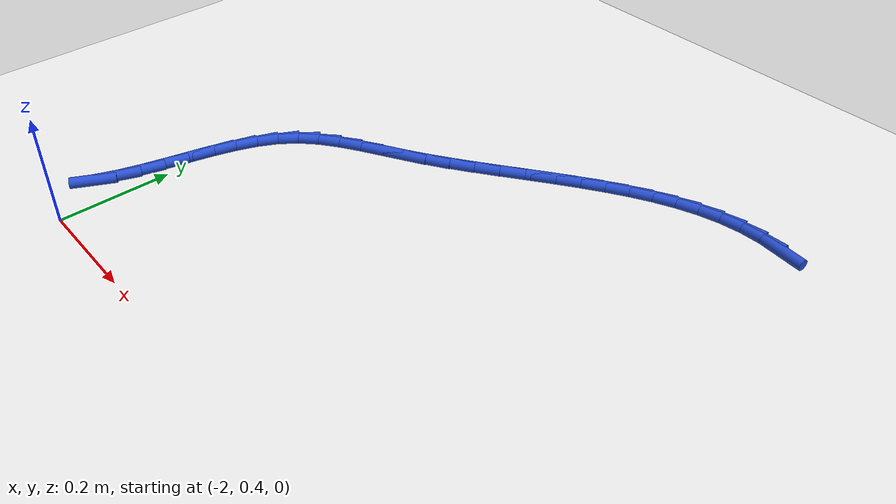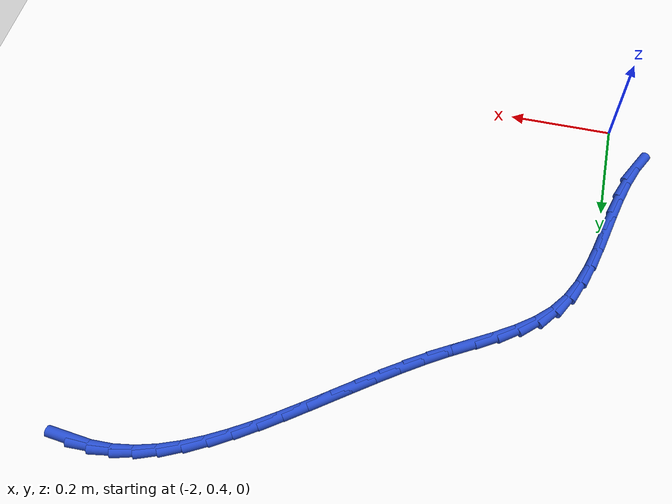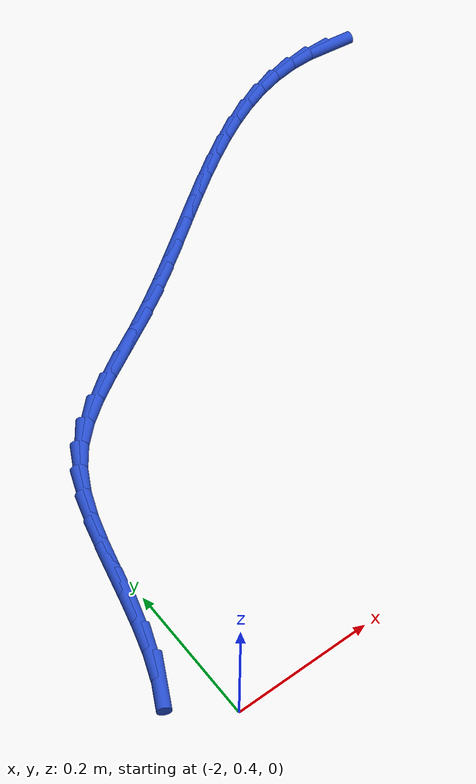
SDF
<sdf version="1.6">
 <world name="default">
  <model name="ground_plane">
   <static>1</static>
   <link name="link">
    <collision name="collision">
     <geometry><plane><normal>0 0 1</normal><size>100 100</size></plane></geometry>
     <surface><friction><ode><mu>100</mu><mu2>50</mu2></ode></friction></surface>
    </collision>
    <visual name="visual">
     <cast_shadows>0</cast_shadows>
     <geometry><plane><normal>0 0 1</normal><size>100 100</size></plane></geometry>
     <material>
      <script><uri>file://media/materials/scripts/gazebo.material</uri><name>Gazebo/WhiteGlow</name></script>
     </material>
    </visual>
   </link>
  </model>
  <model name="line">
   <link name="link_44">
    <pose>-1.1717841676066945 1.2384197218476316 0.01 0 1.57 -0.11088151773742679</pose>
    <collision name="collision">
     <geometry><cylinder><radius>0.01</radius><length>0.08</length></cylinder></geometry>
    </collision>
    <visual name="visual">
     <material>
      <script><name>Gazebo/Blue</name><uri>file://media/materials/scripts/gazebo.material</uri></script>
     </material>
     <geometry><cylinder><radius>0.01</radius><length>0.08</length></cylinder></geometry>
    </visual>
   </link>
   <link name="link_45">
    <pose>-1.2100180524771333 1.2426766130963771 0.01 0 1.57 0.025314217034336586</pose>
    <collision name="collision">
     <geometry><cylinder><radius>0.01</radius><length>0.08</length></cylinder></geometry>
    </collision>
    <visual name="visual">
     <material>
      <script><name>Gazebo/Blue</name><uri>file://media/materials/scripts/gazebo.material</uri></script>
     </material>
     <geometry><cylinder><radius>0.01</radius><length>0.08</length></cylinder></geometry>
    </visual>
   </link>
   <link name="link_46">
    <pose>-1.2477469843669005 1.2417213306659491 0.01 0 1.57 0.15141361080776108</pose>
    <collision name="collision">
     <geometry><cylinder><radius>0.01</radius><length>0.08</length></cylinder></geometry>
    </collision>
    <visual name="visual">
     <material>
      <script><name>Gazebo/Blue</name><uri>file://media/materials/scripts/gazebo.material</uri></script>
     </material>
     <geometry><cylinder><radius>0.01</radius><length>0.08</length></cylinder></geometry>
    </visual>
   </link>
   <link name="link_47">
    <pose>-1.2850392059864337 1.2360312302268042 0.01 0 1.57 0.26301214079685964</pose>
    <collision name="collision">
     <geometry><cylinder><radius>0.01</radius><length>0.08</length></cylinder></geometry>
    </collision>
    <visual name="visual">
     <material>
      <script><name>Gazebo/Blue</name><uri>file://media/materials/scripts/gazebo.material</uri></script>
     </material>
     <geometry><cylinder><radius>0.01</radius><length>0.08</length></cylinder></geometry>
    </visual>
   </link>
   <link name="link_48">
    <pose>-1.3219636184169998 1.2260893528450796 0.01 0 1.57 0.3581972302512357</pose>
    <collision name="collision">
     <geometry><cylinder><radius>0.01</radius><length>0.08</length></cylinder></geometry>
    </collision>
    <visual name="visual">
     <material>
      <script><name>Gazebo/Blue</name><uri>file://media/materials/scripts/gazebo.material</uri></script>
     </material>
     <geometry><cylinder><radius>0.01</radius><length>0.08</length></cylinder></geometry>
    </visual>
   </link>
   <link name="link_49">
    <pose>-1.3585891227398659 1.2123787395869117 0.01 0 1.57 0.4368920691162273</pose>
    <collision name="collision">
     <geometry><cylinder><radius>0.01</radius><length>0.08</length></cylinder></geometry>
    </collision>
    <visual name="visual">
     <material>
      <script><name>Gazebo/Blue</name><uri>file://media/materials/scripts/gazebo.material</uri></script>
     </material>
     <geometry><cylinder><radius>0.01</radius><length>0.08</length></cylinder></geometry>
    </visual>
   </link>
   <link name="link_50">
    <pose>-1.3949846200362965 1.1953824315184376 0.01 0 1.57 0.5000855164081188</pose>
    <collision name="collision">
     <geometry><cylinder><radius>0.01</radius><length>0.08</length></cylinder></geometry>
    </collision>
    <visual name="visual">
     <material>
      <script><name>Gazebo/Blue</name><uri>file://media/materials/scripts/gazebo.material</uri></script>
     </material>
     <geometry><cylinder><radius>0.01</radius><length>0.08</length></cylinder></geometry>
    </visual>
   </link>
   <link name="link_51">
    <pose>-1.4312190113875587 1.1755834697057939 0.01 0 1.57 0.549187407337661</pose>
    <collision name="collision">
     <geometry><cylinder><radius>0.01</radius><length>0.08</length></cylinder></geometry>
    </collision>
    <visual name="visual">
     <material>
      <script><name>Gazebo/Blue</name><uri>file://media/materials/scripts/gazebo.material</uri></script>
     </material>
     <geometry><cylinder><radius>0.01</radius><length>0.08</length></cylinder></geometry>
    </visual>
   </link>
   <link name="link_52">
    <pose>-1.4673611978749193 1.1534648952151176 0.01 0 1.57 0.5856199729258188</pose>
    <collision name="collision">
     <geometry><cylinder><radius>0.01</radius><length>0.08</length></cylinder></geometry>
    </collision>
    <visual name="visual">
     <material>
      <script><name>Gazebo/Blue</name><uri>file://media/materials/scripts/gazebo.material</uri></script>
     </material>
     <geometry><cylinder><radius>0.01</radius><length>0.08</length></cylinder></geometry>
    </visual>
   </link>
   <link name="link_53">
    <pose>-1.5034800805796433 1.129509749112545 0.01 0 1.57 0.6106060815456396</pose>
    <collision name="collision">
     <geometry><cylinder><radius>0.01</radius><length>0.08</length></cylinder></geometry>
    </collision>
    <visual name="visual">
     <material>
      <script><name>Gazebo/Blue</name><uri>file://media/materials/scripts/gazebo.material</uri></script>
     </material>
     <geometry><cylinder><radius>0.01</radius><length>0.08</length></cylinder></geometry>
    </visual>
   </link>
   <link name="link_54">
    <pose>-1.5396445605829978 1.1042010724642133 0.01 0 1.57 0.6250806225158202</pose>
    <collision name="collision">
     <geometry><cylinder><radius>0.01</radius><length>0.08</length></cylinder></geometry>
    </collision>
    <visual name="visual">
     <material>
      <script><name>Gazebo/Blue</name><uri>file://media/materials/scripts/gazebo.material</uri></script>
     </material>
     <geometry><cylinder><radius>0.01</radius><length>0.08</length></cylinder></geometry>
    </visual>
   </link>
   <link name="link_55">
    <pose>-1.5759235389662485 1.0780219063362588 0.01 0 1.57 0.6296661046621987</pose>
    <collision name="collision">
     <geometry><cylinder><radius>0.01</radius><length>0.08</length></cylinder></geometry>
    </collision>
    <visual name="visual">
     <material>
      <script><name>Gazebo/Blue</name><uri>file://media/materials/scripts/gazebo.material</uri></script>
     </material>
     <geometry><cylinder><radius>0.01</radius><length>0.08</length></cylinder></geometry>
    </visual>
   </link>
   <link name="link_56">
    <pose>-1.6123859168106618 1.0514552917948188 0.01 0 1.57 0.6246766472419134</pose>
    <collision name="collision">
     <geometry><cylinder><radius>0.01</radius><length>0.08</length></cylinder></geometry>
    </collision>
    <visual name="visual">
     <material>
      <script><name>Gazebo/Blue</name><uri>file://media/materials/scripts/gazebo.material</uri></script>
     </material>
     <geometry><cylinder><radius>0.01</radius><length>0.08</length></cylinder></geometry>
    </visual>
   </link>
   <link name="link_57">
    <pose>-1.6491005951975033 1.0249842699060299 0.01 0 1.57 0.6101326448427539</pose>
    <collision name="collision">
     <geometry><cylinder><radius>0.01</radius><length>0.08</length></cylinder></geometry>
    </collision>
    <visual name="visual">
     <material>
      <script><name>Gazebo/Blue</name><uri>file://media/materials/scripts/gazebo.material</uri></script>
     </material>
     <geometry><cylinder><radius>0.01</radius><length>0.08</length></cylinder></geometry>
    </visual>
   </link>
   <link name="link_58">
    <pose>-1.6861364752080408 0.9990918817360284 0.01 0 1.57 0.5857806319993869</pose>
    <collision name="collision">
     <geometry><cylinder><radius>0.01</radius><length>0.08</length></cylinder></geometry>
    </collision>
    <visual name="visual">
     <material>
      <script><name>Gazebo/Blue</name><uri>file://media/materials/scripts/gazebo.material</uri></script>
     </material>
     <geometry><cylinder><radius>0.01</radius><length>0.08</length></cylinder></geometry>
    </visual>
   </link>
   <link name="link_59">
    <pose>-1.723562457923539 0.9742611683509518 0.01 0 1.57 0.5513042983160626</pose>
    <collision name="collision">
     <geometry><cylinder><radius>0.01</radius><length>0.08</length></cylinder></geometry>
    </collision>
    <visual name="visual">
     <material>
      <script><name>Gazebo/Blue</name><uri>file://media/materials/scripts/gazebo.material</uri></script>
     </material>
     <geometry><cylinder><radius>0.01</radius><length>0.08</length></cylinder></geometry>
    </visual>
   </link>
   <link name="link_60">
    <pose>-1.7614426939557197 0.9509685645470538 0.01 0 1.57 0.5212864418836666</pose>
    <collision name="collision">
     <geometry><cylinder><radius>0.01</radius><length>0.08</length></cylinder></geometry>
    </collision>
    <visual name="visual">
     <material>
      <script><name>Gazebo/Blue</name><uri>file://media/materials/scripts/gazebo.material</uri></script>
     </material>
     <geometry><cylinder><radius>0.01</radius><length>0.08</length></cylinder></geometry>
    </visual>
   </link>
   <link name="link_61">
    <pose>-1.799447845583769 0.9291432981348755 0.01 0 1.57 0.522524151788277</pose>
    <collision name="collision">
     <geometry><cylinder><radius>0.01</radius><length>0.08</length></cylinder></geometry>
    </collision>
    <visual name="visual">
     <material>
      <script><name>Gazebo/Blue</name><uri>file://media/materials/scripts/gazebo.material</uri></script>
     </material>
     <geometry><cylinder><radius>0.01</radius><length>0.08</length></cylinder></geometry>
    </visual>
   </link>
   <link name="link_62">
    <pose>-1.8365664592503095 0.9077660083138831 0.01 0 1.57 0.5600886514096115</pose>
    <collision name="collision">
     <geometry><cylinder><radius>0.01</radius><length>0.08</length></cylinder></geometry>
    </collision>
    <visual name="visual">
     <material>
      <script><name>Gazebo/Blue</name><uri>file://media/materials/scripts/gazebo.material</uri></script>
     </material>
     <geometry><cylinder><radius>0.01</radius><length>0.08</length></cylinder></geometry>
    </visual>
   </link>
   <link name="link_63">
    <pose>-1.871719070022234 0.8857227538428262 0.01 0 1.57 0.6383545939307347</pose>
    <collision name="collision">
     <geometry><cylinder><radius>0.01</radius><length>0.08</length></cylinder></geometry>
    </collision>
    <visual name="visual">
     <material>
      <script><name>Gazebo/Blue</name><uri>file://media/materials/scripts/gazebo.material</uri></script>
     </material>
     <geometry><cylinder><radius>0.01</radius><length>0.08</length></cylinder></geometry>
    </visual>
   </link>
   <link name="link_64">
    <pose>-1.9038262129664318 0.8618995934804544 0.01 0 1.57 0.7622721081351629</pose>
    <collision name="collision">
     <geometry><cylinder><radius>0.01</radius><length>0.08</length></cylinder></geometry>
    </collision>
    <visual name="visual">
     <material>
      <script><name>Gazebo/Blue</name><uri>file://media/materials/scripts/gazebo.material</uri></script>
     </material>
     <geometry><cylinder><radius>0.01</radius><length>0.08</length></cylinder></geometry>
    </visual>
   </link>
   <link name="link_65">
    <pose>-1.9318084231497958 0.8351825859855172 0.01 0 1.57 0.9291488403048755</pose>
    <collision name="collision">
     <geometry><cylinder><radius>0.01</radius><length>0.08</length></cylinder></geometry>
    </collision>
    <visual name="visual">
     <material>
      <script><name>Gazebo/Blue</name><uri>file://media/materials/scripts/gazebo.material</uri></script>
     </material>
     <geometry><cylinder><radius>0.01</radius><length>0.08</length></cylinder></geometry>
    </visual>
   </link>
   <link name="link_66">
    <pose>-1.9546931605929267 0.8045514782603879 0.01 0 1.57 1.0881359467757474</pose>
    <collision name="collision">
     <geometry><cylinder><radius>0.01</radius><length>0.08</length></cylinder></geometry>
    </collision>
    <visual name="visual">
     <material>
      <script><name>Gazebo/Blue</name><uri>file://media/materials/scripts/gazebo.material</uri></script>
     </material>
     <geometry><cylinder><radius>0.01</radius><length>0.08</length></cylinder></geometry>
    </visual>
   </link>
   <link name="link_67">
    <pose>-1.9727562121993567 0.7700798070501369 0.01 0 1.57 1.2061750852037698</pose>
    <collision name="collision">
     <geometry><cylinder><radius>0.01</radius><length>0.08</length></cylinder></geometry>
    </collision>
    <visual name="visual">
     <material>
      <script><name>Gazebo/Blue</name><uri>file://media/materials/scripts/gazebo.material</uri></script>
     </material>
     <geometry><cylinder><radius>0.01</radius><length>0.08</length></cylinder></geometry>
    </visual>
   </link>
   <link name="link_68">
    <pose>-1.9870812724670175 0.7325490015058 0.01 0 1.57 1.2852200536229144</pose>
    <collision name="collision">
     <geometry><cylinder><radius>0.01</radius><length>0.08</length></cylinder></geometry>
    </collision>
    <visual name="visual">
     <material>
      <script><name>Gazebo/Blue</name><uri>file://media/materials/scripts/gazebo.material</uri></script>
     </material>
     <geometry><cylinder><radius>0.01</radius><length>0.08</length></cylinder></geometry>
    </visual>
   </link>
   <link name="link_69">
    <pose>-1.9987656153898448 0.6927523891962072 0.01 0 1.57 1.3298440328931234</pose>
    <collision name="collision">
     <geometry><cylinder><radius>0.01</radius><length>0.08</length></cylinder></geometry>
    </collision>
    <visual name="visual">
     <material>
      <script><name>Gazebo/Blue</name><uri>file://media/materials/scripts/gazebo.material</uri></script>
     </material>
     <geometry><cylinder><radius>0.01</radius><length>0.08</length></cylinder></geometry>
    </visual>
   </link>
   <link name="link_70">
    <pose>-2.0089065149617724 0.6514832976901893 0.01 0 1.57 1.3436723399939021</pose>
    <collision name="collision">
     <geometry><cylinder><radius>0.01</radius><length>0.08</length></cylinder></geometry>
    </collision>
    <visual name="visual">
     <material>
      <script><name>Gazebo/Blue</name><uri>file://media/materials/scripts/gazebo.material</uri></script>
     </material>
     <geometry><cylinder><radius>0.01</radius><length>0.08</length></cylinder></geometry>
    </visual>
   </link>
   <link name="link_71">
    <pose>-2.0186012451767366 0.6095350545565762 0.01 0 1.57 1.3283543671889042</pose>
    <collision name="collision">
     <geometry><cylinder><radius>0.01</radius><length>0.08</length></cylinder></geometry>
    </collision>
    <visual name="visual">
     <material>
      <script><name>Gazebo/Blue</name><uri>file://media/materials/scripts/gazebo.material</uri></script>
     </material>
     <geometry><cylinder><radius>0.01</radius><length>0.08</length></cylinder></geometry>
    </visual>
   </link>
   <link name="link_72">
    <pose>-2.02894708002867 0.5677009873641989 0.01 0 1.57 1.2834637673185854</pose>
    <collision name="collision">
     <geometry><cylinder><radius>0.01</radius><length>0.08</length></cylinder></geometry>
    </collision>
    <visual name="visual">
     <material>
      <script><name>Gazebo/Blue</name><uri>file://media/materials/scripts/gazebo.material</uri></script>
     </material>
     <geometry><cylinder><radius>0.01</radius><length>0.08</length></cylinder></geometry>
    </visual>
   </link>
   <link name="link_73">
    <pose>-2.041041293511509 0.5267744236818874 0.01 0 1.57 1.206890173770978</pose>
    <collision name="collision">
     <geometry><cylinder><radius>0.01</radius><length>0.08</length></cylinder></geometry>
    </collision>
    <visual name="visual">
     <material>
      <script><name>Gazebo/Blue</name><uri>file://media/materials/scripts/gazebo.material</uri></script>
     </material>
     <geometry><cylinder><radius>0.01</radius><length>0.08</length></cylinder></geometry>
    </visual>
   </link>
   <link name="link_74">
    <pose>-2.0559811596191873 0.4875486910784713 0.01 0 1.57 1.0959520341082813</pose>
    <collision name="collision">
     <geometry><cylinder><radius>0.01</radius><length>0.08</length></cylinder></geometry>
    </collision>
    <visual name="visual">
     <material>
      <script><name>Gazebo/Blue</name><uri>file://media/materials/scripts/gazebo.material</uri></script>
     </material>
     <geometry><cylinder><radius>0.01</radius><length>0.08</length></cylinder></geometry>
    </visual>
   </link>
  </model>
 </world>
</sdf>
